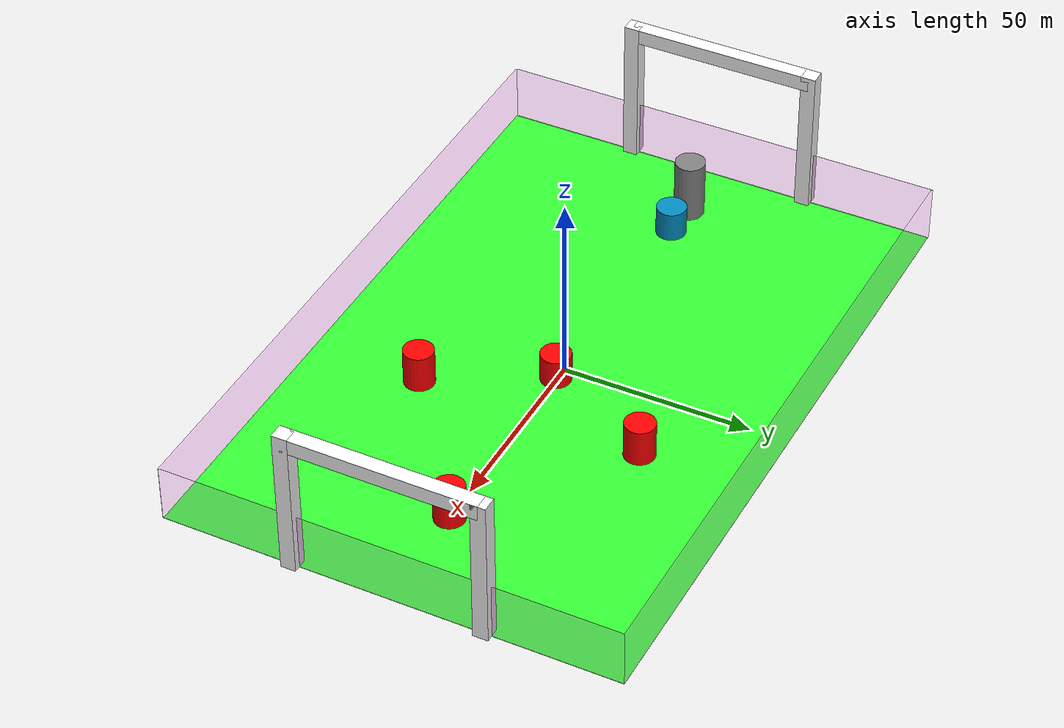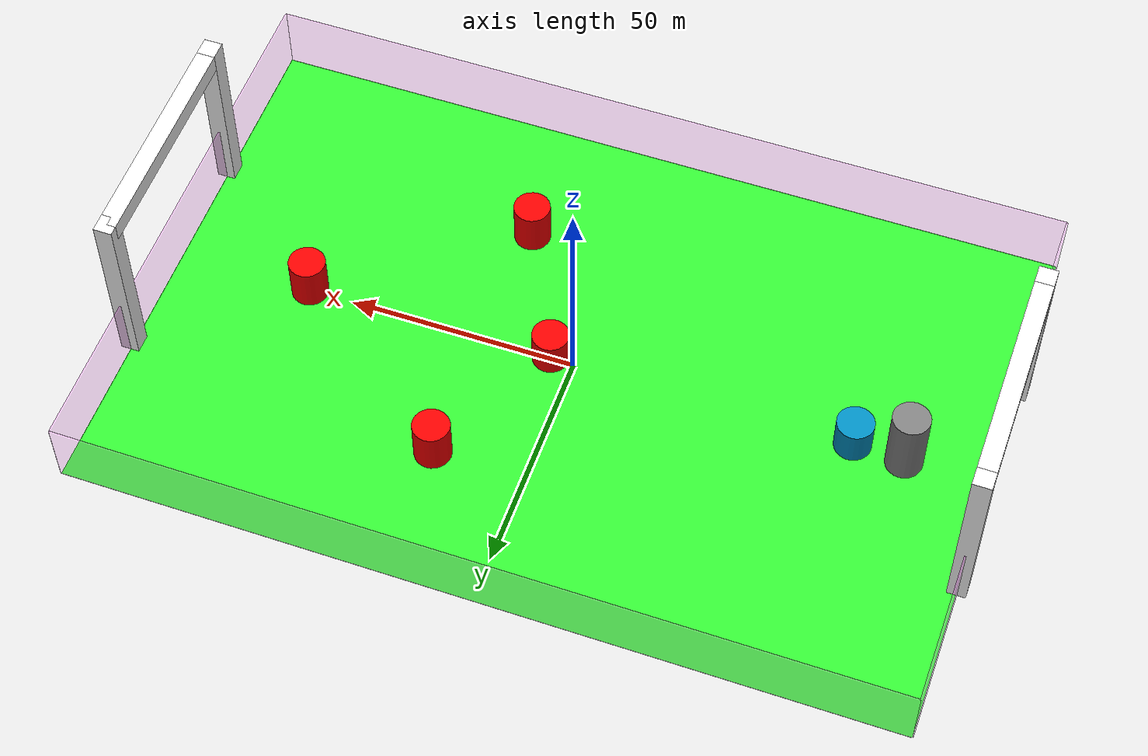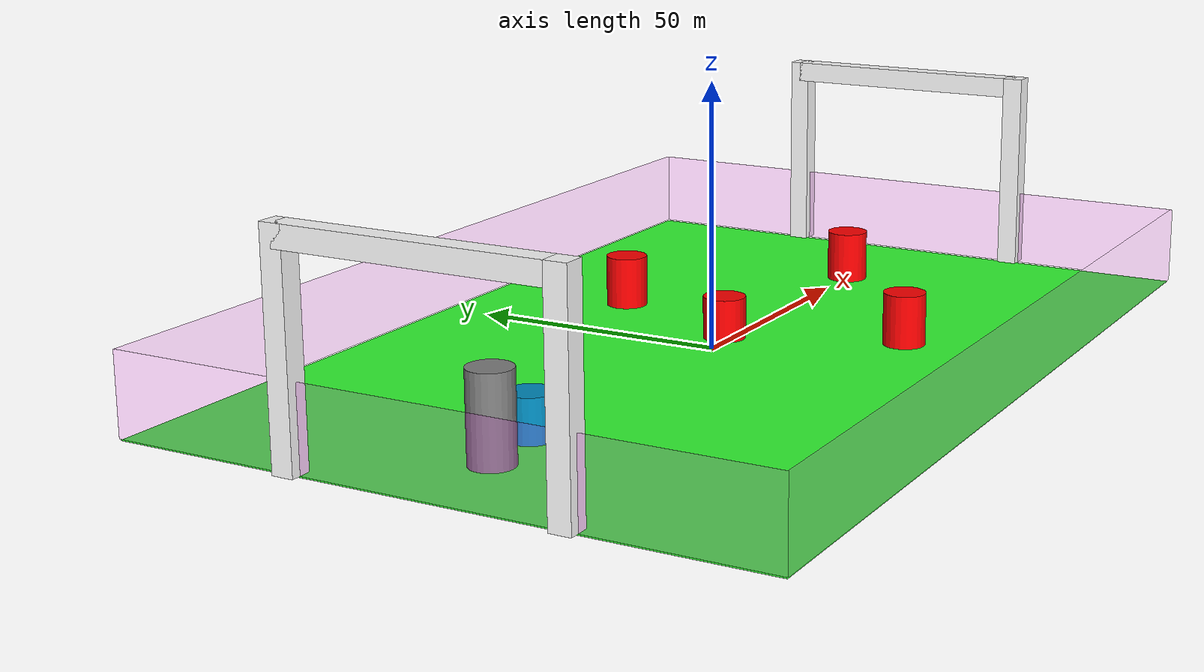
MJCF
<?xml version="1.0"?>
<mujoco>
    <compiler inertiafromgeom="true" angle="degree"/>
    <option gravity="0 0 -9.81" integrator="RK4" timestep="0.05" wind="0 0 0">
        <flag frictionloss="enable" energy="enable" />
    </option>
    <visual>
        <global fovy="45" glow="1.0" />
        <map force="1" />
        <rgba fog="0 0 0 1" />
    </visual>

    <asset>
		<texture type="skybox" builtin="gradient" width="128" height="128" rgb1=".4 .6 .8"
            rgb2="0 0 0"/>
    </asset>

    <worldbody>
        <body name="robot" pos="-72 0 0">
            <joint axis="1 0 0" damping="1.0" name="slide_robot_x" pos="0 0 0" type="slide"/>
            <joint axis="0 1 0" damping="1.0" name="slide_robot_y" pos="0 0 0" type="slide"/>
            <geom mass="25.0" pos="0 0 8" rgba="0.5 0.5 0.5 1.0" size="4 8.0" type="cylinder"/>
        </body>

        <body name="ball" pos="-61 0 0" >
            <joint axis="1 0 0 " damping="1.0" name="ball_x" pos="0 0 0" type="slide"/>
            <joint axis="0 1 0 " damping="1.0" name="ball_y" pos="0 0 0" type="slide"/>
            <joint axis="0 0 1 " damping="1.0" name="ball_z" pos="0 0 0" type="slide"/>
            <geom condim="3" mass="10.0"  pos="0 0 5" friction="0 0 0.5" rgba="0 0.55 0.75 1" size="4 4" type="cylinder"/>
        </body>

        <body name="object" pos="5 0 0" >
            <joint axis="1 0 0 " damping="1.0" name="ball2_x" pos="0 0 0" type="slide"/>
            <joint axis="0 1 0 " damping="1.0" name="ball2_y" pos="0 0 0" type="slide"/>
            <joint axis="0 0 1 " damping="1.0" name="ball2_z" pos="0 0 0" type="slide"/>
            <geom condim="3" mass="50.0"  pos="0 0 5" friction="0 0 0.5" rgba="1 0 0 1" size="4 4" type="cylinder"/>
        </body>

        <body name="object_2" pos="60 0 0" >
            <joint axis="1 0 0 " damping="1.0" name="ball3_x" pos="0 0 0" type="slide"/>
            <joint axis="0 1 0 " damping="1.0" name="ball3_y" pos="0 0 0" type="slide"/>
            <joint axis="0 0 1 " damping="1.0" name="ball3_z" pos="0 0 0" type="slide"/>
            <geom condim="3" mass="50.0"  pos="0 0 5" friction="0 0 0.5" rgba="1 0 0 1" size="4 5" type="cylinder"/>
        </body>

        <body name="object_3" pos="20 30 0" >
            <joint axis="1 0 0 " damping="1.0" name="ball4_x" pos="0 0 0" type="slide"/>
            <joint axis="0 1 0 " damping="1.0" name="ball4_y" pos="0 0 0" type="slide"/>
            <joint axis="0 0 1 " damping="1.0" name="ball4_z" pos="0 0 0" type="slide"/>
            <geom condim="3" mass="50.0"  pos="0 0 5" friction="0 0 0.5" rgba="1 0 0 1" size="4 5" type="cylinder"/>
        </body>

        <body name="object_4" pos="20 -30 0" >
            <joint axis="1 0 0 " damping="1.0" name="ball5_x" pos="0 0 0" type="slide"/>
            <joint axis="0 1 0 " damping="1.0" name="ball5_y" pos="0 0 0" type="slide"/>
            <joint axis="0 0 1 " damping="1.0" name="ball5_z" pos="0 0 0" type="slide"/>
            <geom condim="3" mass="50.0"  pos="0 0 5" friction="0 0 0.5" rgba="1 0 0 1" size="4 5" type="cylinder"/>
        </body>

        <body name="floor" pos="0 0 -0.1">
            <geom condim="1" size="90 60 0.1" friction="0.5 0.5 0.5" rgba="0.2 1.5 0.2 1" type="plane"/>
        </body>

        <body name="wall1" pos="0 60 7.5">
            <geom condim="1" size="90 0.2 7.5" friction="0.0 0.0 0.0" rgba="1.5 0.2 2.5 0.2" type="box"/>
        </body>

        <body name="wall2" pos="90 0 7.5">
            <geom condim="1" size="0.2 60 7.5" friction="0.0 0.0 0.0" rgba="1.5 0.2 2.5 0.2" type="box"/>
        </body>

        <body name="wall3" pos="-90 0 7.5">
            <geom condim="1" size="0.2 60 7.5" friction="0.0 0.0 0.0" rgba="1.5 0.2 2.5 0.2" type="box"/>
        </body>

        <body name="wall4" pos="0 -60 7.5">
            <geom condim="1" size="90 0.2 7.5" friction="0.0 0.0 0.0" rgba="1.5 0.2 2.5 0.2" type="box"/>
        </body>

        <body name="goal_poal1" pos="90 -25 20">
            <geom condim="1" size="2 2 20" friction="0.0 0.0 0.0" rgba="10 10 10 1" type="box"/>
        </body>
        <body name="goal_poal2" pos="-90 25 20">
            <geom condim="1" size="2 2 20" friction="0.0 0.0 0.0" rgba="10 10 10 1" type="box"/>
        </body>
        <body name="goal_poal3" pos="-90 -25 20">
            <geom condim="1" size="2 2 20" friction="0.0 0.0 0.0" rgba="10 10 10 1" type="box"/>
        </body>
        <body name="goal_poal4" pos="90 25 20">
            <geom condim="1" size="2 2 20" friction="0.0 0.0 0.0" rgba="10 10 10 1" type="box"/>
        </body>
        <body name="goal_poal5" pos="90 0 38">
            <geom condim="1" size="2 25 2" friction="0.0 0.0 0.0" rgba="10 10 10 1" type="box"/>
        </body>
        <body name="goal_poal6" pos="-90 0 38">
            <geom condim="1" size="2 25 2" friction="0.0 0.0 0.0" rgba="10 10 10 1" type="box"/>
        </body>
    </worldbody>
    <actuator>
        <velocity gear="35.0" joint="slide_robot_x"/>
        <velocity gear="35.0" joint="slide_robot_y"/>
    </actuator>
</mujoco>
